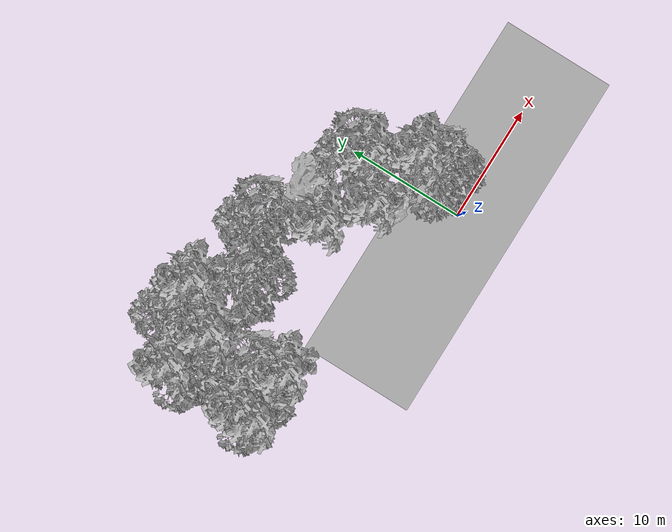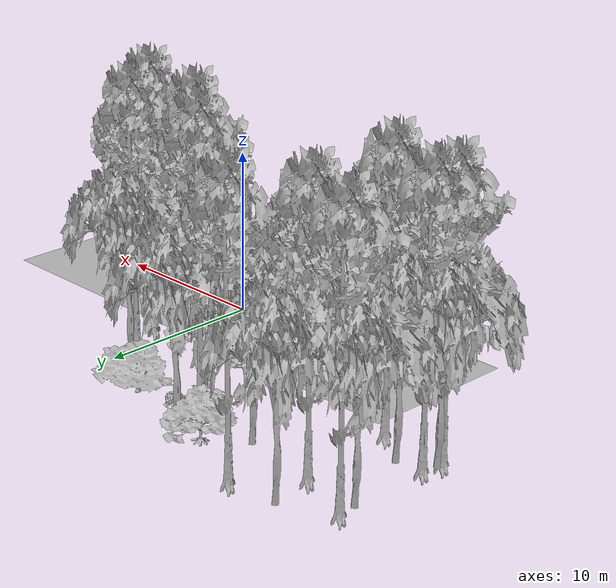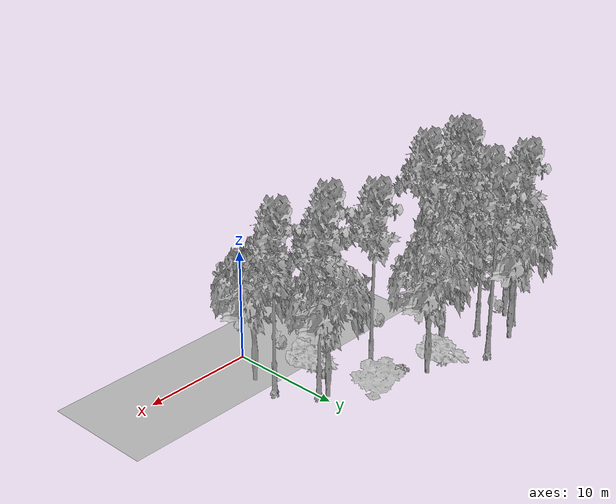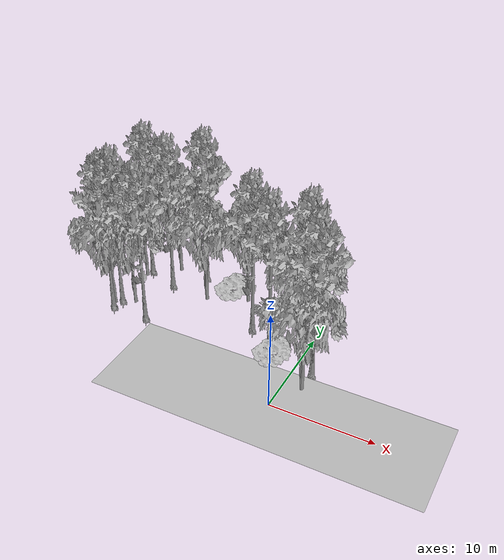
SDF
<sdf version="1.7">
 <world name="default">
  <model name="ground_plane">
   <static>1</static>
   <link name="link">
    <collision name="collision">
     <pose>-50 0 0 0 -0 0</pose>
     <geometry><plane><normal>0 0 1</normal><size>100 100</size></plane></geometry>
     <surface><contact><ode><min_depth>0.01</min_depth><max_vel>0</max_vel></ode></contact></surface>
    </collision>
    <visual name="grass">
     <cast_shadows>0</cast_shadows>
     <geometry>
      <mesh>
       <scale>0.5814285714285714 0.18142857142857144 0.1</scale>
       <uri>file://grass_plane/meshes/grass_plane.dae</uri>
      </mesh>
     </geometry>
    </visual>
   </link>
  </model>
  <model name="Tree 8">
   <static>1</static>
   <pose>-16.658015910942453 5.509180796923367 0 1.57079 -0 0</pose>
   <link name="link">
    <collision name="collision">
     <geometry><mesh><scale>3.5 5 3.5</scale><uri>model://tree_9/meshes/tree_9.obj</uri></mesh></geometry>
    </collision>
    <visual name="visual">
     <geometry><mesh><scale>3.5 5 3.5</scale><uri>model://tree_9/meshes/tree_9.obj</uri></mesh></geometry>
    </visual>
   </link>
  </model>
  <model name="Tree 45">
   <static>1</static>
   <pose>-0.6706317585110213 9.25622668928656 0 1.57079 -0 0</pose>
   <link name="link">
    <collision name="collision">
     <geometry><mesh><scale>3.5 5 3.5</scale><uri>model://tree_2/meshes/tree_2.obj</uri></mesh></geometry>
    </collision>
    <visual name="visual">
     <geometry><mesh><scale>3.5 5 3.5</scale><uri>model://tree_2/meshes/tree_2.obj</uri></mesh></geometry>
    </visual>
   </link>
  </model>
  <model name="Tree 48">
   <static>1</static>
   <pose>-6.208880384806292 8.926299032087545 0 1.57079 -0 0</pose>
   <link name="link">
    <collision name="collision">
     <geometry><mesh><scale>3.5 5 3.5</scale><uri>model://tree_9/meshes/tree_9.obj</uri></mesh></geometry>
    </collision>
    <visual name="visual">
     <geometry><mesh><scale>3.5 5 3.5</scale><uri>model://tree_9/meshes/tree_9.obj</uri></mesh></geometry>
    </visual>
   </link>
  </model>
  <model name="Tree 59">
   <static>1</static>
   <pose>-14.699318598030082 14.677927146867212 0 1.57079 -0 0</pose>
   <link name="link">
    <collision name="collision">
     <geometry><mesh><scale>3.5 5 3.5</scale><uri>model://tree_9/meshes/tree_9.obj</uri></mesh></geometry>
    </collision>
    <visual name="visual">
     <geometry><mesh><scale>3.5 5 3.5</scale><uri>model://tree_9/meshes/tree_9.obj</uri></mesh></geometry>
    </visual>
   </link>
  </model>
  <model name="Tree 77">
   <static>1</static>
   <pose>1.736536837435203 5.5372507241837 0 1.57079 -0 0</pose>
   <link name="link">
    <collision name="collision">
     <geometry><mesh><scale>3.5 5 3.5</scale><uri>model://tree_9/meshes/tree_9.obj</uri></mesh></geometry>
    </collision>
    <visual name="visual">
     <geometry><mesh><scale>3.5 5 3.5</scale><uri>model://tree_9/meshes/tree_9.obj</uri></mesh></geometry>
    </visual>
   </link>
  </model>
  <model name="Tree 83">
   <static>1</static>
   <pose>-17.194056053878416 11.6694360757018 0 1.57079 -0 0</pose>
   <link name="link">
    <collision name="collision">
     <geometry><mesh><scale>3.5 5 3.5</scale><uri>model://tree_9/meshes/tree_9.obj</uri></mesh></geometry>
    </collision>
    <visual name="visual">
     <geometry><mesh><scale>3.5 5 3.5</scale><uri>model://tree_9/meshes/tree_9.obj</uri></mesh></geometry>
    </visual>
   </link>
  </model>
  <model name="Tree 89">
   <static>1</static>
   <pose>-20.786915184070125 11.97540804568921 0 1.57079 -0 0</pose>
   <link name="link">
    <collision name="collision">
     <geometry><mesh><scale>3.5 5 3.5</scale><uri>model://tree_2/meshes/tree_2.obj</uri></mesh></geometry>
    </collision>
    <visual name="visual">
     <geometry><mesh><scale>3.5 5 3.5</scale><uri>model://tree_2/meshes/tree_2.obj</uri></mesh></geometry>
    </visual>
   </link>
  </model>
  <model name="Tree 94">
   <static>1</static>
   <pose>-10.66644351729213 12.914404641978212 0 1.57079 -0 0</pose>
   <link name="link">
    <collision name="collision">
     <geometry><mesh><scale>4 2.5 4</scale><uri>model://tree_1/meshes/tree_1.obj</uri></mesh></geometry>
    </collision>
    <visual name="visual">
     <geometry><mesh><scale>4 2.5 4</scale><uri>model://tree_1/meshes/tree_1.obj</uri></mesh></geometry>
    </visual>
   </link>
  </model>
  <model name="Tree 101">
   <static>1</static>
   <pose>-20.60595161561718 12.95044465165126 0 1.57079 -0 0</pose>
   <link name="link">
    <collision name="collision">
     <geometry><mesh><scale>3.5 5 3.5</scale><uri>model://tree_9/meshes/tree_9.obj</uri></mesh></geometry>
    </collision>
    <visual name="visual">
     <geometry><mesh><scale>3.5 5 3.5</scale><uri>model://tree_9/meshes/tree_9.obj</uri></mesh></geometry>
    </visual>
   </link>
  </model>
  <model name="Tree 103">
   <static>1</static>
   <pose>-0.30466897959207273 8.54337919321582 0 1.57079 -0 0</pose>
   <link name="link">
    <collision name="collision">
     <geometry><mesh><scale>3.5 5 3.5</scale><uri>model://tree_9/meshes/tree_9.obj</uri></mesh></geometry>
    </collision>
    <visual name="visual">
     <geometry><mesh><scale>3.5 5 3.5</scale><uri>model://tree_9/meshes/tree_9.obj</uri></mesh></geometry>
    </visual>
   </link>
  </model>
  <model name="Tree 122">
   <static>1</static>
   <pose>-20.697538863360833 5.664931701132424 0 1.57079 -0 0</pose>
   <link name="link">
    <collision name="collision">
     <geometry><mesh><scale>3.5 5 3.5</scale><uri>model://tree_9/meshes/tree_9.obj</uri></mesh></geometry>
    </collision>
    <visual name="visual">
     <geometry><mesh><scale>3.5 5 3.5</scale><uri>model://tree_9/meshes/tree_9.obj</uri></mesh></geometry>
    </visual>
   </link>
  </model>
  <model name="Tree 123">
   <static>1</static>
   <pose>-2.498802534405087 5.668323734335576 0 1.57079 -0 0</pose>
   <link name="link">
    <collision name="collision">
     <geometry><mesh><scale>4 2.5 4</scale><uri>model://tree_1/meshes/tree_1.obj</uri></mesh></geometry>
    </collision>
    <visual name="visual">
     <geometry><mesh><scale>4 2.5 4</scale><uri>model://tree_1/meshes/tree_1.obj</uri></mesh></geometry>
    </visual>
   </link>
  </model>
  <model name="Tree 125">
   <static>1</static>
   <pose>1.6380855710624331 3.2420928084337604 0 1.57079 -0 0</pose>
   <link name="link">
    <collision name="collision">
     <geometry><mesh><scale>3.5 5 3.5</scale><uri>model://tree_2/meshes/tree_2.obj</uri></mesh></geometry>
    </collision>
    <visual name="visual">
     <geometry><mesh><scale>3.5 5 3.5</scale><uri>model://tree_2/meshes/tree_2.obj</uri></mesh></geometry>
    </visual>
   </link>
  </model>
  <model name="Tree 140">
   <static>1</static>
   <pose>-20.947672661652067 6.19575695740561 0 1.57079 -0 0</pose>
   <link name="link">
    <collision name="collision">
     <geometry><mesh><scale>3.5 5 3.5</scale><uri>model://tree_2/meshes/tree_2.obj</uri></mesh></geometry>
    </collision>
    <visual name="visual">
     <geometry><mesh><scale>3.5 5 3.5</scale><uri>model://tree_2/meshes/tree_2.obj</uri></mesh></geometry>
    </visual>
   </link>
  </model>
  <model name="Tree 146">
   <static>1</static>
   <pose>-8.833702372254002 12.87198744679884 0 1.57079 -0 0</pose>
   <link name="link">
    <collision name="collision">
     <geometry><mesh><scale>3.5 5 3.5</scale><uri>model://tree_2/meshes/tree_2.obj</uri></mesh></geometry>
    </collision>
    <visual name="visual">
     <geometry><mesh><scale>3.5 5 3.5</scale><uri>model://tree_2/meshes/tree_2.obj</uri></mesh></geometry>
    </visual>
   </link>
  </model>
  <model name="Tree 147">
   <static>1</static>
   <pose>-20.469324756906506 6.916197449429021 0 1.57079 -0 0</pose>
   <link name="link">
    <collision name="collision">
     <geometry><mesh><scale>3.5 5 3.5</scale><uri>model://tree_9/meshes/tree_9.obj</uri></mesh></geometry>
    </collision>
    <visual name="visual">
     <geometry><mesh><scale>3.5 5 3.5</scale><uri>model://tree_9/meshes/tree_9.obj</uri></mesh></geometry>
    </visual>
   </link>
  </model>
  <model name="Tree 148">
   <static>1</static>
   <pose>-3.1961022348839023 6.519317003803938 0 1.57079 -0 0</pose>
   <link name="link">
    <collision name="collision">
     <geometry><mesh><scale>3.5 5 3.5</scale><uri>model://tree_9/meshes/tree_9.obj</uri></mesh></geometry>
    </collision>
    <visual name="visual">
     <geometry><mesh><scale>3.5 5 3.5</scale><uri>model://tree_9/meshes/tree_9.obj</uri></mesh></geometry>
    </visual>
   </link>
  </model>
  <model name="Tree 157">
   <static>1</static>
   <pose>-17.994967067590245 14.526512190385539 0 1.57079 -0 0</pose>
   <link name="link">
    <collision name="collision">
     <geometry><mesh><scale>3.5 5 3.5</scale><uri>model://tree_2/meshes/tree_2.obj</uri></mesh></geometry>
    </collision>
    <visual name="visual">
     <geometry><mesh><scale>3.5 5 3.5</scale><uri>model://tree_2/meshes/tree_2.obj</uri></mesh></geometry>
    </visual>
   </link>
  </model>
  <model name="Tree 158">
   <static>1</static>
   <pose>-3.9681198802478264 11.565383503626492 0 1.57079 -0 0</pose>
   <link name="link">
    <collision name="collision">
     <geometry><mesh><scale>3 2 3</scale><uri>model://tree_3/meshes/tree_3.obj</uri></mesh></geometry>
    </collision>
    <visual name="visual">
     <geometry><mesh><scale>3 2 3</scale><uri>model://tree_3/meshes/tree_3.obj</uri></mesh></geometry>
    </visual>
   </link>
  </model>
  <model name="Tree 176">
   <static>1</static>
   <pose>-19.153981085776913 7.277073735158652 0 1.57079 -0 0</pose>
   <link name="link">
    <collision name="collision">
     <geometry><mesh><scale>3.5 5 3.5</scale><uri>model://tree_2/meshes/tree_2.obj</uri></mesh></geometry>
    </collision>
    <visual name="visual">
     <geometry><mesh><scale>3.5 5 3.5</scale><uri>model://tree_2/meshes/tree_2.obj</uri></mesh></geometry>
    </visual>
   </link>
  </model>
  <model name="Tree 179">
   <static>1</static>
   <pose>-12.813835560651718 11.172909365858025 0 1.57079 -0 0</pose>
   <link name="link">
    <collision name="collision">
     <geometry><mesh><scale>3.5 5 3.5</scale><uri>model://tree_2/meshes/tree_2.obj</uri></mesh></geometry>
    </collision>
    <visual name="visual">
     <geometry><mesh><scale>3.5 5 3.5</scale><uri>model://tree_2/meshes/tree_2.obj</uri></mesh></geometry>
    </visual>
   </link>
  </model>
  <model name="Bush 0">
   <static>1</static>
   <pose>-6.96230380789239 11.55294251106859 0 1.57079 -0 0</pose>
   <link name="link">
    <collision name="collision">
     <geometry><mesh><scale>2 2 2</scale><uri>model://bush_3/meshes/bush_3.obj</uri></mesh></geometry>
     <surface><contact><collide_without_contact>false</collide_without_contact></contact></surface>
    </collision>
    <visual name="visual">
     <geometry><mesh><scale>2 2 2</scale><uri>model://bush_3/meshes/bush_3.obj</uri></mesh></geometry>
    </visual>
   </link>
  </model>
 </world>
</sdf>
